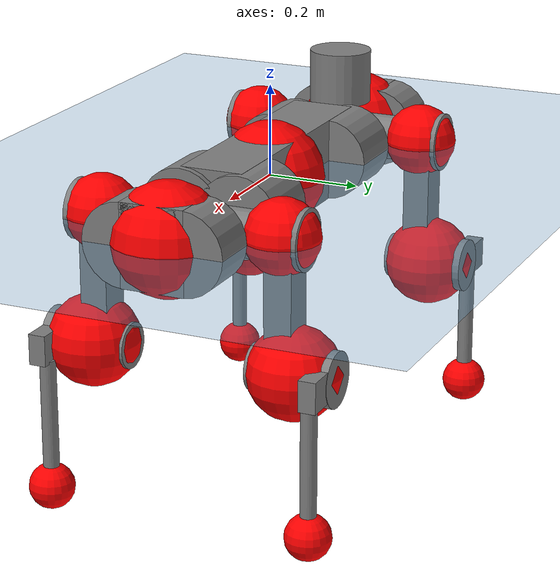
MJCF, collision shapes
<mujoco model="anymal_c">
  <compiler angle="radian" assetdir="assets" balanceinertia="true" inertiafromgeom="false"/>

  <option timestep="0.005" density="1.2" viscosity="2e-05"/>

  <size nkey="1"/>

  <visual>
    <quality shadowsize="8192"/>
    <map shadowclip="0.5"/>
  </visual>

  <default>
    <default class="/">
      <material specular="0" shininess="0.25"/>
      <geom contype="0" conaffinity="0" group="1" solref="-1000 -80"/>
      <site size="0.01 0.005 0.005" group="5"/>
      <general forcelimited="true" forcerange="-80 80" biastype="affine" gainprm="80" biasprm="0 -80 -2"/>
      <default class="anymal_c">
        <joint armature="0.01" damping="0.01" frictionloss="0.1"/>
        <default class="visual">
          <geom type="mesh" group="2"/>
          <default class="visual_zflip"/>
        </default>
        <default class="collision">
          <geom type="cylinder" group="3"/>
          <default class="foot">
            <geom size="0.03 0 0" type="sphere" condim="6" priority="1" friction="0.8 0.02 0.01" solimp="0.015 1 0.03"/>
          </default>
        </default>
      </default>
      <default class="reward_collision_sphere">
        <geom group="5" rgba="1 0 0 1"/>
      </default>
    </default>
  </default>

  <asset>
    <texture type="skybox" colorspace="auto" name="//unnamed_texture_0" builtin="gradient" rgb1="0.95 0.95 0.95" rgb2="0.95 0.95 0.95" width="100" height="600"/>
    <texture type="2d" colorspace="auto" name="texplane" builtin="checker" rgb1="0.345 0.575 0.748" rgb2="0.345 0.575 0.748" markrgb="1 1 1" width="512" height="512"/>
    <texture type="2d" colorspace="linear" name="base" file="base.png"/>
    <texture type="2d" colorspace="linear" name="top_shell" file="top_shell.png"/>
    <texture type="2d" colorspace="linear" name="bottom_shell" file="bottom_shell.png"/>
    <texture type="2d" colorspace="linear" name="remote" file="remote.png"/>
    <texture type="2d" colorspace="linear" name="hatch" file="hatch.png"/>
    <texture type="2d" colorspace="linear" name="handle" file="handle.png"/>
    <texture type="2d" colorspace="linear" name="face" file="face.png"/>
    <texture type="2d" colorspace="linear" name="battery" file="battery.png"/>
    <texture type="2d" colorspace="linear" name="lidar_cage" file="lidar_cage.png"/>
    <texture type="2d" colorspace="linear" name="depth_camera" file="depth_camera.png"/>
    <texture type="2d" colorspace="linear" name="wide_angle_camera" file="wide_angle_camera.png"/>
    <texture type="2d" colorspace="linear" name="lidar" file="lidar.png"/>
    <texture type="2d" colorspace="linear" name="drive" file="drive.png"/>
    <texture type="2d" colorspace="linear" name="hip_l" file="hip_l.png"/>
    <texture type="2d" colorspace="linear" name="shank_l" file="shank_l.png"/>
    <texture type="2d" colorspace="linear" name="foot" file="foot.png"/>
    <texture type="2d" colorspace="linear" name="thigh" file="thigh.png"/>
    <texture type="2d" colorspace="linear" name="shank_r" file="shank_r.png"/>
    <texture type="2d" colorspace="linear" name="hip_r" file="hip_r.png"/>
    <material name="MatPlane" class="/" texture="texplane" texuniform="true" texrepeat="2 2" specular="0.9" shininess="0.5"/>
    <material name="black_plastic" class="/" rgba="0.007 0.007 0.007 1"/>
    <material name="green" class="/" rgba="0.052 0.178 0.033 1"/>
    <material name="red" class="/" rgba="0.178 0.006 0.005 1"/>
    <material name="yellow" class="/" rgba="0.178 0.119 0.006 1"/>
    <material name="lwl" class="/" rgba="0.8 0.8 0.8 1"/>
    <material name="base" class="/" texture="base"/>
    <material name="top_shell" class="/" texture="top_shell"/>
    <material name="bottom_shell" class="/" texture="bottom_shell"/>
    <material name="hip_l" class="/" texture="hip_l"/>
    <material name="thigh" class="/" texture="thigh"/>
    <material name="shank_l" class="/" texture="shank_l"/>
    <material name="foot" class="/" texture="foot"/>
    <material name="hip_r" class="/" texture="hip_r"/>
    <material name="shank" class="/" texture="shank_r"/>
    <material name="hatch" class="/" texture="hatch"/>
    <material name="remote" class="/" texture="remote"/>
    <material name="handle" class="/" texture="handle"/>
    <material name="face" class="/" texture="face"/>
    <material name="depth_camera" class="/" texture="depth_camera"/>
    <material name="wide_angle_camera" class="/" texture="wide_angle_camera"/>
    <material name="battery" class="/" texture="battery"/>
    <material name="lidar_cage" class="/" texture="lidar_cage"/>
    <material name="lidar" class="/" texture="lidar"/>
    <material name="drive" class="/" texture="drive"/>
    <mesh name="base_0" class="/" file="base_0.obj"/>
    <mesh name="base_1" class="/" file="base_1.obj"/>
    <mesh name="base_2" class="/" file="base_2.obj"/>
    <mesh name="base_3" class="/" file="base_3.obj"/>
    <mesh name="base_4" class="/" file="base_4.obj"/>
    <mesh name="base_5" class="/" file="base_5.obj"/>
    <mesh name="top_shell" class="/" file="top_shell.obj"/>
    <mesh name="bottom_shell" class="/" file="bottom_shell.obj"/>
    <mesh name="remote" class="/" file="remote.obj"/>
    <mesh name="handle" class="/" file="handle.obj"/>
    <mesh name="face" class="/" file="face.obj"/>
    <mesh name="wide_angle_camera" class="/" file="wide_angle_camera.obj"/>
    <mesh name="depth_camera" class="/" file="depth_camera.obj"/>
    <mesh name="battery" class="/" file="battery.obj"/>
    <mesh name="lidar_cage" class="/" file="lidar_cage.obj"/>
    <mesh name="lidar" class="/" file="lidar.obj"/>
    <mesh name="drive" class="/" file="drive.obj"/>
    <mesh name="hip_l" class="/" file="hip_l.obj"/>
    <mesh name="thigh" class="/" file="thigh.obj"/>
    <mesh name="shank_l" class="/" file="shank_l.obj"/>
    <mesh name="foot" class="/" file="foot.obj"/>
    <mesh name="hip_r" class="/" file="hip_r.obj"/>
    <mesh name="hatch" class="/" file="hatch.obj"/>
    <mesh name="shank_r" class="/" file="shank_r.obj"/>
  </asset>

  <worldbody>
    <geom name="floor" class="/" size="100 100 0.125" type="plane" group="0" material="MatPlane"/>
    <light name="toplight_shadow" class="/" pos="0 0 5" dir="0.0990148 0.0990148 -0.990148" type="directional" ambient="0.04 0.04 0.04" diffuse="0.55 0.55 0.55" specular="0.12 0.12 0.12"/>
    <light name="toplight_fill" class="/" pos="0 0 5" dir="0.0990148 0.0990148 -0.990148" type="directional" castshadow="false" ambient="0.04 0.04 0.04" diffuse="0.3 0.3 0.3" specular="0.08 0.08 0.08"/>
    <body name="trunk" childclass="anymal_c" pos="0.0012604 0.000194821 0.00089873" quat="1 -2.77889e-05 0.000361465 3.50625e-05">
      <inertial pos="0.00139438 -0.000698 0.0488813" quat="0.500736 0.500296 0.501161 0.497801" mass="18.3435" diaginertia="0.863175 0.407022 0.211464"/>
      <joint name="//unnamed_joint_0" type="free" armature="0" damping="0" frictionloss="0"/>
      <geom name="//unnamed_geom_1" class="visual" material="green" mesh="base_0"/>
      <geom name="//unnamed_geom_2" class="visual" material="yellow" mesh="base_1"/>
      <geom name="//unnamed_geom_3" class="visual" material="red" mesh="base_2"/>
      <geom name="//unnamed_geom_4" class="visual" material="black_plastic" mesh="base_3"/>
      <geom name="//unnamed_geom_5" class="visual" material="lwl" mesh="base_4"/>
      <geom name="//unnamed_geom_6" class="visual" material="base" mesh="base_5"/>
      <geom name="trunk_1" class="collision" size="0.28738 0.0693675 0.0891868" type="box"/>
      <geom name="trunk_2" class="collision" size="0.0891868 0.0718449" pos="0.230721 0.0642089 0" quat="0.707107 0 0.707107 0"/>
      <geom name="trunk_3" class="collision" size="0.0891868 0.0718449" pos="-0.230721 0.0642089 0" quat="0.707107 0 0.707107 0"/>
      <geom name="trunk_4" class="collision" size="0.0891868 0.0718449" pos="0.230721 -0.0642089 0" quat="0.707107 0 0.707107 0"/>
      <geom name="trunk_5" class="collision" size="0.0891868 0.0718449" pos="-0.230721 -0.0642089 0" quat="0.707107 0 0.707107 0"/>
      <geom name="//unnamed_geom_12" class="visual" material="top_shell" mesh="top_shell"/>
      <geom name="//unnamed_geom_13" class="visual" material="bottom_shell" mesh="bottom_shell"/>
      <geom name="//unnamed_geom_14" class="visual" material="remote" mesh="remote"/>
      <geom name="//unnamed_geom_15" class="visual" material="handle" mesh="handle"/>
      <geom name="//unnamed_geom_16" class="visual" pos="0.439695 0 0" quat="1 0 0 0" material="face" mesh="face"/>
      <geom name="trunk_6" class="collision" size="0.054503 0.0693675 0.0891868" pos="0.498039 0 0" type="box"/>
      <geom name="//unnamed_geom_18" class="collision" size="0.0891868 0.054503" pos="0.498039 0.0642089 0" quat="0.707107 0 0.707107 0"/>
      <geom name="//unnamed_geom_19" class="collision" size="0.0891868 0.054503" pos="0.498039 -0.0642089 0" quat="0.707107 0 0.707107 0"/>
      <geom name="//unnamed_geom_20" class="visual" pos="0.489709 0 -0.028548" quat="0.965926 0 0.258819 0" material="depth_camera" mesh="depth_camera"/>
      <geom name="//unnamed_geom_21" class="visual" pos="0.544183 0 0.0148927" material="wide_angle_camera" mesh="wide_angle_camera"/>
      <geom name="//unnamed_geom_22" class="visual_zflip" pos="-0.439695 0 0" quat="0 0 0 1" material="face" mesh="face"/>
      <geom name="trunk_7" class="collision" size="0.054503 0.0693675 0.0891868" pos="-0.498039 0 0" quat="0 0 0 1" type="box"/>
      <geom name="//unnamed_geom_24" class="collision" size="0.0891868 0.054503" pos="-0.498039 -0.0642089 0" quat="0 -0.707107 0 0.707107"/>
      <geom name="//unnamed_geom_25" class="collision" size="0.0891868 0.054503" pos="-0.498039 0.0642089 0" quat="0 -0.707107 0 0.707107"/>
      <geom name="//unnamed_geom_26" class="visual" pos="-0.489709 0 -0.028548" quat="0 -0.258819 0 0.965926" material="depth_camera" mesh="depth_camera"/>
      <geom name="//unnamed_geom_27" class="visual_zflip" pos="-0.544183 0 0.0148927" quat="0 0 0 1" material="wide_angle_camera" mesh="wide_angle_camera"/>
      <geom name="//unnamed_geom_28" class="visual" material="battery" mesh="battery"/>
      <geom name="//unnamed_geom_29" class="visual" pos="0 0.0682485 0.0294012" quat="0.683013 -0.183013 0.183013 0.683013" material="depth_camera" mesh="depth_camera"/>
      <geom name="//unnamed_geom_30" class="visual" pos="0 -0.0682485 0.0294012" quat="0.683013 0.183013 0.183013 -0.683013" material="depth_camera" mesh="depth_camera"/>
      <geom name="//unnamed_geom_31" class="visual" pos="-0.386126 0 0.0731205" quat="1 0 0 0" material="lidar_cage" mesh="lidar_cage"/>
      <geom name="trunk_8" class="collision" size="0.0693675 0.0594578" pos="-0.386126 0 0.132811"/>
      <geom name="//unnamed_geom_33" class="visual" pos="-0.386126 -5.63833e-05 0.141466" quat="0.707107 0 0 -0.707107" material="lidar" mesh="lidar"/>
      <geom name="//unnamed_geom_34" class="visual" pos="0.31813 0.0954236 -1.33803e-09" quat="0.258819 0.965926 0 0" material="drive" mesh="drive"/>
      <geom name="//unnamed_geom_35" class="visual" pos="0.31813 -0.0954236 1.33803e-09" quat="0.258819 -0.965926 0 0" material="drive" mesh="drive"/>
      <geom name="//unnamed_geom_36" class="visual" pos="-0.31813 0.0954236 1.33803e-09" quat="0 0 0.965926 -0.258819" material="drive" mesh="drive"/>
      <geom name="//unnamed_geom_37" class="visual" pos="-0.31813 -0.0954236 -1.33803e-09" quat="0 0 -0.965926 -0.258819" material="drive" mesh="drive"/>
      <geom name="//unnamed_geom_38" class="visual" pos="0.123051 0 0.0726231" quat="1 0 0 0" material="hatch" mesh="hatch"/>
      <geom name="//unnamed_geom_39" class="reward_collision_sphere" size="0.118916"/>
      <geom name="//unnamed_geom_40" class="reward_collision_sphere" size="0.118916" pos="0.477353 0 0"/>
      <geom name="//unnamed_geom_41" class="reward_collision_sphere" size="0.118916" pos="-0.477353 0 0"/>
      <site name="imu" pos="0.264291 0.00304172 0.0488049" size="0.00990964"/>
      <camera name="track" pos="0 -1.83454 0" quat="0.707107 0.707107 0 0" mode="trackcom"/>
      <camera name="ego_camera" pos="0.477353 0 -0.0397935" quat="-0.5 -0.5 0.5 0.5"/>
      <body name="LF_HIP" pos="0.318573 0.0950762 0.000200581" quat="0.258723 0.965951 0.000396781 4.59377e-05">
        <inertial pos="0.0604526 -0.0132847 -0.00860543" quat="-0.128022 0.709985 -0.134757 0.679243" mass="2.74952" diaginertia="0.0080326 0.00317176 0.00320359"/>
        <joint name="LF_HAA" pos="0 0 0" axis="0.999962 -0.00563347 -0.00658774" range="-0.697389 0.482736" armature="0.00987749" damping="0.00548068" frictionloss="0.0984136"/>
        <geom name="//unnamed_geom_42" class="visual" pos="0 -7.87105e-05 1.29281e-05" quat="0.258819 -0.965926 0 0" material="hip_l" mesh="hip_l"/>
        <geom name="//unnamed_geom_43" class="visual" pos="0.063541 -0.0751315 -0.0439509" quat="0.183013 -0.683013 0.683013 0.183013" material="drive" mesh="drive"/>
        <geom name="//unnamed_geom_44" class="collision" size="0.0495482 0.0693675" pos="0.063541 -0.0109704 -0.00686935" quat="-0.353553 -0.612372 0.612372 -0.353553"/>
        <body name="LF_THIGH" pos="0.0628742 -0.0669442 -0.0431735" quat="0.182951 -0.683053 0.682996 0.182983">
          <inertial pos="0.0324291 0.000872522 -0.245042" quat="0.993183 -0.00540686 -0.0805802 0.0840499" mass="3.01311" diaginertia="0.0403705 0.0194719 0.00417034"/>
          <joint name="LF_HFE" pos="0 0 0" axis="0.999999 -7.85887e-05 -0.0016621" range="-3.15746 3.14032" armature="0.010143" damping="0.00995064" frictionloss="0.101323"/>
          <geom name="//unnamed_geom_45" class="visual" pos="0.00285539 4.49943e-06 0" quat="0.707107 0 0 -0.707107" material="thigh" mesh="thigh"/>
          <geom name="//unnamed_geom_46" class="collision" size="0.0644127 0.0396386" pos="0.0424314 0 0" quat="0.5 0.5 -0.5 -0.5"/>
          <geom name="//unnamed_geom_47" class="collision" size="0.0371611 0.0297289 0.140037" pos="0.0318236 0 -0.140584" quat="0.707107 0 0 -0.707107" type="box"/>
          <geom name="//unnamed_geom_48" class="visual" pos="0.106397 0 -0.283528" quat="1 0 0 0" material="drive" mesh="drive"/>
          <geom name="//unnamed_geom_49" class="collision" size="0.0495482 0.0693675" pos="0.0321418 0 -0.283528" quat="0.707107 0 0.707107 0"/>
          <geom name="//unnamed_geom_50" class="reward_collision_sphere" size="0.0792771" pos="0.0265196 0 0"/>
          <body name="LF_SHANK" pos="0.106666 -0.000956863 -0.283421" quat="1 -0.000121599 0.000313541 0.000114185">
            <inertial pos="0.00577943 -0.0563083 -0.0809282" quat="0.992763 -0.117634 -0.00341693 -0.0239071" mass="0.572949" diaginertia="0.014037 0.00604463 0.00110739"/>
            <joint name="LF_KFE" pos="0 0 0" axis="0.99999 0.000750388 -0.00434394" range="-3.15339 3.13339" armature="0.00949925" damping="0.00664892" frictionloss="0.094465"/>
            <geom name="//unnamed_geom_51" class="visual" pos="0.000931081 0.00496457 0" quat="0.707107 0 0 -0.707107" material="shank_l" mesh="shank_l"/>
            <geom name="LF_kfe_act" class="collision" size="0.0594578 0.0198193" pos="0.0212157 0 0" quat="0.5 0.5 -0.5 -0.5"/>
            <geom name="//unnamed_geom_53" class="collision" size="0.0569794 0.033445 0.0188283" pos="0.0212157 -0.0527421 0" quat="0.5 0.5 -0.5 -0.5" type="box"/>
            <geom name="//unnamed_geom_54" class="visual" pos="0.013843 -0.079074 -0.336225" quat="0.382683 0 0 -0.92388" material="foot" mesh="foot"/>
            <geom name="LF_calf" class="collision" size="0.0173419 0.139976" pos="0.0138432 -0.0806739 -0.168112" quat="0.707107 0 0 -0.707107"/>
            <geom name="LF_foot" class="foot" size="0.0315762" pos="0.0138432 -0.0806739 -0.313841" quat="0.707107 0 0 -0.707107"/>
            <geom name="//unnamed_geom_57" class="reward_collision_sphere" size="0.0990964" pos="-0.0530393 0 0"/>
            <geom name="//unnamed_geom_58" class="reward_collision_sphere" size="0.0495482" pos="0.0138432 -0.0806739 -0.313841"/>
            <site name="LF_foot" class="foot" pos="0.0138432 -0.0806739 -0.313841" quat="0.707107 0 0 -0.707107" size="0.00990964"/>
          </body>
        </body>
      </body>
      <body name="RF_HIP" pos="0.319089 -0.0959788 -0.000398406" quat="0.258814 -0.965927 -3.17456e-05 -5.10998e-05">
        <inertial pos="0.0592933 0.0141294 -0.0081865" quat="0.135596 0.679129 0.127719 0.709989" mass="2.70749" diaginertia="0.00799271 0.00323099 0.00327252"/>
        <joint name="RF_HAA" pos="0 0 0" axis="0.999981 -0.00495187 -0.00361039" stiffness="0.000817844" range="-0.50012 0.723244" armature="0.00986317" damping="0.00911596" frictionloss="0.0982288"/>
        <geom name="//unnamed_geom_59" class="visual" pos="0 7.87099e-05 1.29281e-05" quat="0.258819 0.965926 0 0" material="hip_r" mesh="hip_r"/>
        <geom name="//unnamed_geom_60" class="visual" pos="0.063541 0.0751315 -0.0439509" quat="0.183013 0.683013 0.683013 -0.183013" material="drive" mesh="drive"/>
        <geom name="//unnamed_geom_61" class="collision" size="0.0495482 0.0693675" pos="0.063541 0.0109704 -0.00686935" quat="-0.353553 0.612372 0.612372 0.353553"/>
        <body name="RF_THIGH" pos="0.0636881 0.0652929 -0.0425396" quat="0.182874 0.683002 0.683064 -0.183">
          <inertial pos="0.0318392 0.000201193 -0.244248" quat="0.992941 -0.00832505 -0.0791674 0.0879255" mass="2.99181" diaginertia="0.0410895 0.0197096 0.00412813"/>
          <joint name="RF_HFE" pos="0 0 0" axis="1 0.000133833 0.000172888" range="-3.15099 3.13842" armature="0.00993242" damping="0.00819515" frictionloss="0.094953"/>
          <geom name="//unnamed_geom_62" class="visual" pos="0.00285539 4.49943e-06 0" quat="0.707107 0 0 -0.707107" material="thigh" mesh="thigh"/>
          <geom name="//unnamed_geom_63" class="collision" size="0.0644127 0.0396386" pos="0.0424314 0 0" quat="0.5 0.5 0.5 0.5"/>
          <geom name="//unnamed_geom_64" class="collision" size="0.0371611 0.0297289 0.140037" pos="0.0318236 0 -0.140584" quat="0.707107 0 0 0.707107" type="box"/>
          <geom name="//unnamed_geom_65" class="visual" pos="0.106397 0 -0.283528" quat="1 0 0 0" material="drive" mesh="drive"/>
          <geom name="//unnamed_geom_66" class="collision" size="0.0495482 0.0693675" pos="0.0321418 0 -0.283528" quat="0.707107 0 0.707107 0"/>
          <geom name="//unnamed_geom_67" class="reward_collision_sphere" size="0.0792771" pos="0.0265196 0 0"/>
          <body name="RF_SHANK" pos="0.106128 0.000285817 -0.282755" quat="1 -1.1853e-05 -5.48102e-06 -2.96529e-05">
            <inertial pos="0.00589932 0.0559573 -0.0799137" quat="0.993056 0.115261 -0.00219753 0.0234486" mass="0.574235" diaginertia="0.0136172 0.00598871 0.00109584"/>
            <joint name="RF_KFE" pos="0 0 0" axis="0.999999 0.000245962 -0.00152816" range="-3.13201 3.12559" armature="0.0101174" damping="0.0066677" frictionloss="0.1026"/>
            <geom name="//unnamed_geom_68" class="visual" pos="0.000931076 -0.00496456 0" quat="0.707107 0 0 0.707107" material="shank" mesh="shank_r"/>
            <geom name="RF_kfe_act" class="collision" size="0.0594578 0.0198193" pos="0.0212157 0 0" quat="0.5 0.5 0.5 0.5"/>
            <geom name="//unnamed_geom_70" class="collision" size="0.0569794 0.033445 0.0188283" pos="0.0212157 0.0527421 0" quat="0.5 0.5 0.5 0.5" type="box"/>
            <geom name="//unnamed_geom_71" class="visual" pos="0.0138435 0.079074 -0.336225" quat="0.382683 0 0 0.92388" material="foot" mesh="foot"/>
            <geom name="RF_calf" class="collision" size="0.0173419 0.139976" pos="0.0138432 0.0806739 -0.168112" quat="0.707107 0 0 0.707107"/>
            <geom name="RF_foot" class="foot" size="0.0296442" pos="0.0138432 0.0806739 -0.313841" quat="0.707107 0 0 0.707107"/>
            <geom name="//unnamed_geom_74" class="reward_collision_sphere" size="0.0990964" pos="-0.0530393 0 0"/>
            <geom name="//unnamed_geom_75" class="reward_collision_sphere" size="0.0495482" pos="0.0138432 0.0806739 -0.313841"/>
            <site name="RF_foot" class="foot" pos="0.0138432 0.0806739 -0.313841" quat="0.707107 0 0 0.707107" size="0.00990964"/>
          </body>
        </body>
      </body>
      <body name="LH_HIP" pos="-0.317902 0.0955411 0.000901994" quat="1.72609e-05 -0.000119837 0.965912 -0.25887">
        <inertial pos="0.0596189 0.0146879 -0.00792149" quat="0.133539 0.682391 0.132458 0.706375" mass="2.74778" diaginertia="0.00790962 0.00321626 0.00324673"/>
        <joint name="LH_HAA" pos="0 0 0" axis="1 -0.000368018 -0.000386424" range="-0.503108 0.739502" armature="0.00990501" damping="0.0103454" frictionloss="0.101451"/>
        <geom name="//unnamed_geom_76" class="visual" pos="0 7.87099e-05 1.29281e-05" quat="-0.258819 -0.965926 0 0" material="hip_r" mesh="hip_r"/>
        <geom name="//unnamed_geom_77" class="visual" pos="0.063541 0.0751315 -0.0439509" quat="0.183013 0.683013 0.683013 -0.183013" material="drive" mesh="drive"/>
        <geom name="//unnamed_geom_78" class="collision" size="0.0495482 0.0693675" pos="0.063541 0.0109704 -0.00686935" quat="-0.353553 0.612372 0.612372 0.353553"/>
        <body name="LH_THIGH" pos="0.0632615 0.0663385 -0.0418799" quat="0.183047 0.682789 0.683273 -0.182841">
          <inertial pos="0.0327251 -0.00010341 -0.243764" quat="0.992891 -0.00647026 -0.0786759 0.0890822" mass="3.02521" diaginertia="0.0404987 0.0195468 0.00404364"/>
          <joint name="LH_HFE" pos="0 0 0" axis="0.999988 -0.00213348 -0.00433855" range="-3.14818 3.13668" armature="0.00971956" damping="0.0134131" frictionloss="0.0992157"/>
          <geom name="//unnamed_geom_79" class="visual" pos="0.00285539 4.49943e-06 0" quat="0.707107 0 0 -0.707107" material="thigh" mesh="thigh"/>
          <geom name="//unnamed_geom_80" class="collision" size="0.0644127 0.0396386" pos="0.0424314 0 0" quat="0.5 0.5 -0.5 -0.5"/>
          <geom name="//unnamed_geom_81" class="collision" size="0.0371611 0.0297289 0.140037" pos="0.0318236 0 -0.140584" quat="0.707107 0 0 -0.707107" type="box"/>
          <geom name="//unnamed_geom_82" class="visual" pos="0.106397 0 -0.283528" quat="1 0 0 0" material="drive" mesh="drive"/>
          <geom name="//unnamed_geom_83" class="collision" size="0.0495482 0.0693675" pos="0.0321418 0 -0.283528" quat="0.707107 0 0.707107 0"/>
          <geom name="//unnamed_geom_84" class="reward_collision_sphere" size="0.0792771" pos="0.0265196 0 0"/>
          <body name="LH_SHANK" pos="0.106324 -3.35313e-05 -0.284349" quat="1 -5.40275e-05 0.000108083 1.02947e-05">
            <inertial pos="0.00626243 0.0571938 -0.0804043" quat="0.993051 0.114867 0.00348409 0.0253474" mass="0.569661" diaginertia="0.0137464 0.00594993 0.00106991"/>
            <joint name="LH_KFE" pos="0 0 0" axis="0.999997 -0.00106817 0.00220193" range="-3.14299 3.12421" armature="0.0094847" damping="0.0121587" frictionloss="0.104082"/>
            <geom name="//unnamed_geom_85" class="visual" pos="0.000931076 -0.00496456 0" quat="-0.707107 0 0 -0.707107" material="shank" mesh="shank_r"/>
            <geom name="LH_kfe_act" class="collision" size="0.0594578 0.0198193" pos="0.0212157 0 0" quat="0.5 0.5 -0.5 -0.5"/>
            <geom name="//unnamed_geom_87" class="collision" size="0.0569794 0.033445 0.0188283" pos="0.0212157 0.0527421 0" quat="0.5 0.5 -0.5 -0.5" type="box"/>
            <geom name="//unnamed_geom_88" class="visual" pos="0.0138435 0.079074 -0.336225" quat="-0.382683 0 0 -0.92388" material="foot" mesh="foot"/>
            <geom name="LH_calf" class="collision" size="0.0173419 0.139976" pos="0.0138432 0.0806739 -0.168112" quat="0.707107 0 0 -0.707107"/>
            <geom name="LH_foot" class="foot" size="0.0308769" pos="0.0138432 0.0806739 -0.313841" quat="0.707107 0 0 -0.707107"/>
            <geom name="//unnamed_geom_91" class="reward_collision_sphere" size="0.0990964" pos="-0.0530393 0 0"/>
            <geom name="//unnamed_geom_92" class="reward_collision_sphere" size="0.0495482" pos="0.0138432 0.0806739 -0.313841"/>
            <site name="LH_foot" class="foot" pos="0.0138432 0.0806739 -0.313841" quat="0.707107 0 0 -0.707107" size="0.00990964"/>
          </body>
        </body>
      </body>
      <body name="RH_HIP" pos="-0.318286 -0.0947167 0.000355981" quat="-4.74954e-05 4.6851e-05 -0.966075 -0.258261">
        <inertial pos="0.0611495 -0.0145338 -0.00949741" quat="-0.125497 0.709757 -0.134107 0.680081" mass="2.6984" diaginertia="0.00784689 0.00319799 0.00320154"/>
        <joint name="RH_HAA" pos="0 0 0" axis="0.999974 -0.00683872 0.00245373" range="-0.731515 0.502035" armature="0.0103591" damping="0.0086939" frictionloss="0.101569"/>
        <geom name="//unnamed_geom_93" class="visual" pos="0 -7.87105e-05 1.29281e-05" quat="-0.258819 0.965926 0 0" material="hip_l" mesh="hip_l"/>
        <geom name="//unnamed_geom_94" class="visual" pos="0.063541 -0.0751315 -0.0439509" quat="-0.183013 0.683013 -0.683013 -0.183013" material="drive" mesh="drive"/>
        <geom name="//unnamed_geom_95" class="collision" size="0.0495482 0.0693675" pos="0.063541 -0.0109704 -0.00686935" quat="0.353553 0.612372 -0.612372 0.353553"/>
        <body name="RH_THIGH" pos="0.0631478 -0.0657323 -0.0428687" quat="-0.182995 0.683035 -0.682997 -0.183006">
          <inertial pos="0.0326127 -5.48994e-06 -0.244286" quat="0.993087 -0.00440359 -0.0812378 0.0846091" mass="2.97857" diaginertia="0.0403585 0.0192298 0.00406972"/>
          <joint name="RH_HFE" pos="0 0 0" axis="1 -8.76125e-05 -6.73505e-05" range="-3.1385 3.15021" armature="0.00983893" damping="0.00857608" frictionloss="0.101534"/>
          <geom name="//unnamed_geom_96" class="visual" pos="0.00285539 4.49943e-06 0" quat="0.707107 0 0 -0.707107" material="thigh" mesh="thigh"/>
          <geom name="//unnamed_geom_97" class="collision" size="0.0644127 0.0396386" pos="0.0424314 0 0" quat="0.5 0.5 0.5 0.5"/>
          <geom name="//unnamed_geom_98" class="collision" size="0.0371611 0.0297289 0.140037" pos="0.0318236 0 -0.140584" quat="0.707107 0 0 0.707107" type="box"/>
          <geom name="//unnamed_geom_99" class="visual" pos="0.106397 0 -0.283528" quat="1 0 0 0" material="drive" mesh="drive"/>
          <geom name="//unnamed_geom_100" class="collision" size="0.0495482 0.0693675" pos="0.0321418 0 -0.283528" quat="0.707107 0 0.707107 0"/>
          <geom name="//unnamed_geom_101" class="reward_collision_sphere" size="0.0792771" pos="0.0265196 0 0"/>
          <body name="RH_SHANK" pos="0.105611 0.00023485 -0.28498" quat="1 2.40613e-05 1.17655e-05 0.000172352">
            <inertial pos="0.0063257 -0.0556405 -0.0801385" quat="0.992442 -0.119443 -0.00245854 -0.0280227" mass="0.574866" diaginertia="0.0135728 0.00600096 0.00109252"/>
            <joint name="RH_KFE" pos="0 0 0" axis="0.999972 0.00626917 0.00413166" range="-3.13234 3.1317" armature="0.00987335" damping="0.0102727" frictionloss="0.0987374"/>
            <geom name="//unnamed_geom_102" class="visual" pos="0.000931081 0.00496457 0" quat="0.707107 0 0 -0.707107" material="shank_l" mesh="shank_l"/>
            <geom name="RH_kfe_act" class="collision" size="0.0594578 0.0198193" pos="0.0212157 0 0" quat="0.5 0.5 0.5 0.5"/>
            <geom name="//unnamed_geom_104" class="collision" size="0.0569794 0.033445 0.0188283" pos="0.0212157 -0.0527421 0" quat="0.5 0.5 0.5 0.5" type="box"/>
            <geom name="//unnamed_geom_105" class="visual" pos="0.013843 -0.079074 -0.336225" quat="0.382683 0 0 -0.92388" material="foot" mesh="foot"/>
            <geom name="RH_calf" class="collision" size="0.0173419 0.139976" pos="0.0138432 -0.0806739 -0.168112" quat="0.707107 0 0 0.707107"/>
            <geom name="RH_foot" class="foot" size="0.0272316" pos="0.0138432 -0.0806739 -0.313841" quat="0.707107 0 0 0.707107"/>
            <geom name="//unnamed_geom_108" class="reward_collision_sphere" size="0.0990964" pos="-0.0530393 0 0"/>
            <geom name="//unnamed_geom_109" class="reward_collision_sphere" size="0.0495482" pos="0.0138432 -0.0806739 -0.313841"/>
            <site name="RH_foot" class="foot" pos="0.0138432 -0.0806739 -0.313841" quat="0.707107 0 0 0.707107" size="0.00990964"/>
          </body>
        </body>
      </body>
    </body>
  </worldbody>

  <contact>
    <pair class="/" geom1="floor" geom2="LF_foot" name="//unnamed_contact_0"/>
    <pair class="/" geom1="floor" geom2="RF_foot" name="//unnamed_contact_1"/>
    <pair class="/" geom1="floor" geom2="LH_foot" name="//unnamed_contact_2"/>
    <pair class="/" geom1="floor" geom2="RH_foot" name="//unnamed_contact_3"/>
  </contact>

  <actuator>
    <general name="LF_HAA" class="/" joint="LF_HAA" forcerange="-79.9993 79.9993" gainprm="78.8747" biasprm="0 -78.8747 -1.90572"/>
    <general name="LF_HFE" class="/" joint="LF_HFE" forcerange="-82.1638 82.1638" gainprm="78.8747" biasprm="0 -78.8747 -1.90572"/>
    <general name="LF_KFE" class="/" joint="LF_KFE" forcerange="-79.6095 79.6095" gainprm="78.8747" biasprm="0 -78.8747 -1.90572"/>
    <general name="RF_HAA" class="/" joint="RF_HAA" forcerange="-79.7803 79.7803" gainprm="78.8747" biasprm="0 -78.8747 -1.90572"/>
    <general name="RF_HFE" class="/" joint="RF_HFE" forcerange="-77.6469 77.6469" gainprm="78.8747" biasprm="0 -78.8747 -1.90572"/>
    <general name="RF_KFE" class="/" joint="RF_KFE" forcerange="-79.7108 79.7108" gainprm="78.8747" biasprm="0 -78.8747 -1.90572"/>
    <general name="LH_HAA" class="/" joint="LH_HAA" forcerange="-82.8697 82.8697" gainprm="78.8747" biasprm="0 -78.8747 -1.90572"/>
    <general name="LH_HFE" class="/" joint="LH_HFE" forcerange="-82.1629 82.1629" gainprm="78.8747" biasprm="0 -78.8747 -1.90572"/>
    <general name="LH_KFE" class="/" joint="LH_KFE" forcerange="-78.0899 78.0899" gainprm="78.8747" biasprm="0 -78.8747 -1.90572"/>
    <general name="RH_HAA" class="/" joint="RH_HAA" forcerange="-81.8687 81.8687" gainprm="78.8747" biasprm="0 -78.8747 -1.90572"/>
    <general name="RH_HFE" class="/" joint="RH_HFE" forcerange="-82.1361 82.1361" gainprm="78.8747" biasprm="0 -78.8747 -1.90572"/>
    <general name="RH_KFE" class="/" joint="RH_KFE" forcerange="-80.6424 80.6424" gainprm="78.8747" biasprm="0 -78.8747 -1.90572"/>
  </actuator>

  <sensor>
    <gyro site="imu" name="imu_angular_velocity"/>
    <velocimeter site="imu" name="imu_linear_velocity"/>
    <framelinvel objtype="site" objname="LF_foot" name="LF_foot_global_linear_velocity"/>
    <framelinvel objtype="site" objname="RF_foot" name="RF_foot_global_linear_velocity"/>
    <framelinvel objtype="site" objname="LH_foot" name="LH_foot_global_linear_velocity"/>
    <framelinvel objtype="site" objname="RH_foot" name="RH_foot_global_linear_velocity"/>
  </sensor>

  <keyframe>
    <key name="home" qpos="0 0 0.55 1 0 0 0 0 0.4 -0.8 0 -0.4 0.8 0 -0.4 0.8 0 0.4 -0.8"/>
  </keyframe>
</mujoco>
